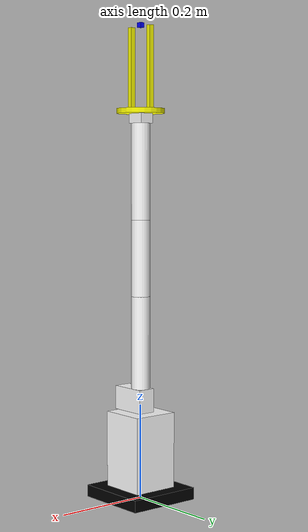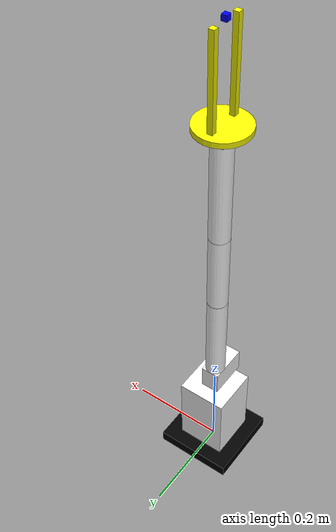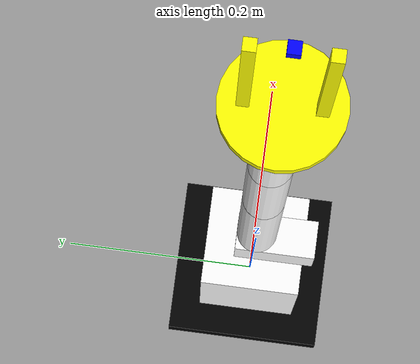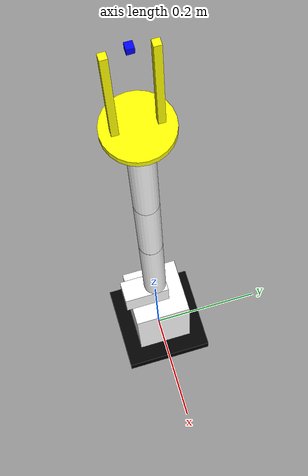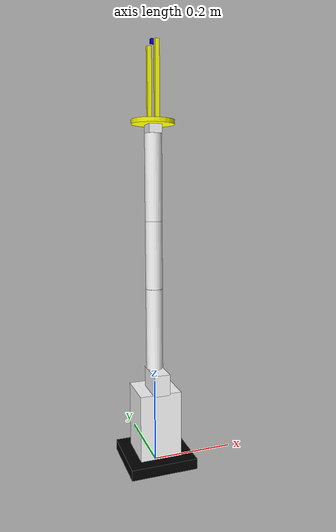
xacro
<?xml version="1.0"?>

<robot name="robotic_arm" xmlns:xacro="http://www.ros.org/wiki/xacro">

<material name="Yellow">
        <color rgba="1.0 1.0 0.0 1.0"/>
    </material>

    <material name="Black">
        <color rgba="0.0 0.0 0.0 1.0"/>
    </material>

<material name="White">
        <color rgba="1.0 1.0 1.0 1.0"/>
    </material>

 <material name="Blue">
        <color rgba="0.0 0.0 1.0 1.0"/>
    </material>

<!-- Shoulder yaw link properties -->
  <property name="shoulder_yaw_len" value="0.195" />

  <!-- Elbow roll link properties -->
  <property name="elbow_roll_len" value="0.16" />

  <property name="deg_to_rad" value="0.01745329251994329577"/>

  <!-- Constants -->
  <property name="M_SCALE" value="0.001 0.001 0.001"/>
  <property name="M_PI" value="3.14159"/>

<xacro:macro name="transmission_block" params="joint_name">
	  <transmission name="tran1">
	    <type>transmission_interface/SimpleTransmission</type>
	    <joint name="${joint_name}">
	      <hardwareInterface>PositionJointInterface</hardwareInterface>
	    </joint>
	    <actuator name="motor1">
	      <hardwareInterface>PositionJointInterface</hardwareInterface>
	      <mechanicalReduction>1</mechanicalReduction>
	    </actuator>
	  </transmission>
   </xacro:macro>

  <!-- BOTTOM LINK -->
  <link name="bottom_link">

	    <visual>
	      <origin xyz="0 0 0.0125" rpy="0 0 0" />
	      <geometry>

		       <box size="0.16 0.16 0.025" />

	      </geometry>
	     <material name="Black" />
	    </visual>

	    <collision>
	      <origin xyz="0 0 0.0125" rpy="0 0 0" />
	      <geometry>

		       <box size="0.16 0.16 0.025" />

	      </geometry>
	      </collision>>
  </link>

<joint name="bottom_joint" type="fixed">
	    <parent link="bottom_link"/>
	    <child link="base_link"/>
	    <origin xyz="0 0 0.105" rpy="0 0 0" />
  </joint>

<!-- BASE LINK -->
<link name="base_link">

	    <visual>
	      <origin xyz="0 0 0" rpy="0 0 0" />
	      <geometry>

		       <box size="0.1 0.1 0.16" />

	      </geometry>
	     <material name="White" />
	    </visual>

	    <collision>
	      <origin xyz="0 0 0" rpy="0 0 0" />
	      <geometry>

		       <box size="0.1 0.1 0.16" />

	      </geometry>
	      </collision>>
  </link>

<joint name="shoulder_pan_joint" type="revolute">
	    <parent link="base_link"/>
	    <child link="shoulder_pan_link"/>
	    <origin xyz="0 0 0.08" rpy="0 0 0" />
	    <axis xyz="0 0 1" />
	    <limit effort="300" velocity="1" lower="-1.57" upper="1.57"/>
  </joint>

<!-- SHOULDER PAN LINK -->
  <link name="shoulder_pan_link" >
	    <visual>
	      <origin xyz="0 -0.02 0.025" rpy="0 0 0" />
	      <geometry>
		    <box size="0.038 0.08 0.05"/>
	      </geometry>
	     <material name="White" />
	    </visual>
	    <collision>
	      <origin xyz="0 -0.02 0.025" rpy="0 0 0" />
	      <geometry>
		    <box size="0.038 0.08 0.05"/>
	      </geometry>
	    </collision>

  </link>

<joint name="shoulder_pitch_joint" type="revolute">
	    <parent link="shoulder_pan_link"/>
	    <child link="shoulder_pitch_link"/>
	    <origin xyz="0 0 0.05" rpy="0 0 0" />
	    <axis xyz="0 1 0" />
	    <limit effort="300" velocity="1" lower="-1.57" upper="1.57" />
  </joint>

  <!-- SHOULDER PITCH LINK -->
  <link name="shoulder_pitch_link" >

	    <visual>
	      <origin xyz="0 0 0" rpy="0 0 0" />
	      <geometry>
		    <box size="0 0 0"/>
	      </geometry>
	     <material name="White" />
	    </visual>
	    <collision>
	      <origin xyz="0 0 0" rpy="0 0 0" />
	      <geometry>
		    <box size="0 0 0"/>
	      </geometry>
	    </collision>

  </link>

<joint name="shoulder_yaw_joint" type="fixed">
	    <parent link="shoulder_pitch_link"/>
	    <child link="shoulder_yaw_link"/>
	    <origin xyz="0 0 0" rpy="0 0 0" />
	    <axis xyz="1 0 0" />
  </joint>

  <!-- SHOULDER YAW LINK -->
  <link name="shoulder_yaw_link" >

	    <visual>
	      <origin xyz="0 0 ${shoulder_yaw_len/2}" rpy="0 0 0" />
	      <geometry>
		    <cylinder radius="0.02" length="${shoulder_yaw_len}"/>
	      </geometry>
	     <material name="White" />
	    </visual>
	    <collision>
	      <origin xyz="0 0 ${shoulder_yaw_len/2}" rpy="0 0 0" />
	      <geometry>
		    <cylinder radius="0.02" length="${shoulder_yaw_len}"/>
	      </geometry>
	    </collision>

  </link>

<joint name="elbow_pitch_joint" type="revolute">
	    <parent link="shoulder_yaw_link"/>
	    <child link="elbow_pitch_link"/>
	    <origin xyz="0 0 ${shoulder_yaw_len}" rpy="0 0 0" />
	    <axis xyz="1 0 0" />
	    <limit effort="300" velocity="1" lower="-1.57" upper="1.57" />
  </joint>

  <!-- ELBOW PITCH LINK -->
  <link name="elbow_pitch_link" >

	    <visual>
	      <origin xyz="0 0 0" rpy="0 0 0" />
	      <geometry>
		    <sphere radius="0.02"/>
	      </geometry>
	     <material name="White" />
	    </visual>
	    <collision>
	      <origin xyz="0 0 0" rpy="0 0 0" />
	      <geometry>
		    <sphere radius="0.02"/>
	      </geometry>
	    </collision>

  </link>

<joint name="elbow_roll_joint" type="fixed">
	    <parent link="elbow_pitch_link"/>
	    <child link="elbow_roll_link"/>
	    <origin xyz="0 0 0" rpy="0 0 0" />
	    <axis xyz="0 0 1" />
	    <dynamics damping="50" friction="1"/>
  </joint>

  <!-- ELBOW ROLL LINK -->
  <link name="elbow_roll_link" >

	    <visual>
	      <origin xyz="0 0 ${elbow_roll_len/2}" rpy="0 0 0" />
	      <geometry>
		    <cylinder radius="0.02" length="${elbow_roll_len}"/>
	      </geometry>
	    <material name="White" />
	    </visual>
	    <collision>
	      <origin xyz="0 0 ${elbow_roll_len/2}" rpy="0 0 0" />
	      <geometry>
		    <cylinder radius="0.02" length="${elbow_roll_len}"/>
	      </geometry>
	    </collision>

  </link>

<joint name="wrist_pitch_joint" type="revolute">
	    <parent link="elbow_roll_link"/>
	    <child link="wrist_pitch_link"/>
	    <origin xyz="0 0 ${elbow_roll_len}" rpy="0 0 0" />
	    <axis xyz="0 1 0" />
	    <limit effort="300" velocity="1" lower="-1.57" upper="1.57" />
	    <dynamics damping="50" friction="1"/>
  </joint>

  <!-- WRIST PITCH LINK -->
  <link name="wrist_pitch_link" >

	    <visual>
	      <origin xyz="0 0 0.1" rpy="0 0 0" />
	      <geometry>
		    <cylinder radius="0.02" length="0.2"/>
	      </geometry>
	     <material name="White" />
	    </visual>
	    <collision>
	      <origin xyz="0 0 0.1" rpy="0 0 0" />
	      <geometry>
		    <cylinder radius="0.02" length="0.2"/>
	      </geometry>
	    </collision>

  </link>

<joint name="wrist_joint" type="continuous">
	    <parent link="wrist_pitch_link"/>
	    <child link="wrist_link"/>
	    <origin xyz="0 0 0.01" rpy="0 0 0" />
	    <axis xyz="0 0 1" />
  </joint>

  <!-- WRIST LINK -->
  <link name="wrist_link" >

	    <visual>
	      <origin xyz="0 0 0.2" rpy="0 0 0" />
	      <geometry>
		    <box size="0.03 0.04 0.02"/>
	      </geometry>
	    <material name="White" />
	    </visual>
	    <collision>
	      <origin xyz="0 0 0.2" rpy="0 0 0" />
	      <geometry>
		    <box size="0.03 0.04 0.02"/>
	      </geometry>
	    </collision>

  </link>

<joint name="grabber_joint" type="fixed">
	    <parent link="wrist_link"/>
	    <child link="grabber_link"/>
	    <origin xyz="0 0 0.21" rpy="0 0 0" />
  </joint>

  <!-- GRABBER LINK -->
  <link name="grabber_link" >

	    <visual>
	      <origin xyz="0 0 0.005" rpy="0 0 0" />
	      <geometry>
		    <cylinder radius="0.05" length="0.01"/>
	      </geometry>
	     <material name="Yellow" />
	    </visual>
	    <collision>
	      <origin xyz="0 0 0.005" rpy="0 0 0" />
	      <geometry>
		    <cylinder radius="0.05" length="0.01"/>
	      </geometry>
	    </collision>

  </link>

<joint name="finger_joint1" type="revolute">
    <parent link="grabber_link"/>
    <child link="finger_link1"/>
    <origin xyz="0.0 0 0.01" />
    <axis xyz="1 0 0" />
    <limit effort="300" velocity="1" lower="-0.30" upper="0.20" />
  </joint>

<!-- FINGER LINK 1-->
  <link name="finger_link1">

     <visual>
      <origin xyz="0 -0.03 0.08"/>
      <geometry>

           <box size="0.01 0.01 0.175" />

      </geometry>
     <material name="Yellow" />
    </visual>

  </link>

<joint name="finger_joint2" type="fixed">
    <parent link="grabber_link"/>
    <child link="finger_link2"/>
    <origin xyz="0.0 0 0.01" />
  </joint>

<!-- FINGER LINK 2-->
  <link name="finger_link2">

     <visual>
      <origin xyz="0 0.03 0.08"/>
      <geometry>

           <box size="0.01 0.01 0.175" />

      </geometry>
     <material name="Yellow" />
    </visual>

  </link>

<joint name="grasping_frame_joint" type="fixed">
      <parent link="grabber_link"/>
      <child link="grasping_frame"/>
      <origin xyz="0 0 0.18" rpy="0 0 0"/>
    </joint>

<!-- Grasping frame -->
    <link name="grasping_frame">
   <visual>
      <origin xyz="0 0 0"/>
      <geometry>

          <box size="0.01 0.01 0.01" />

      </geometry>
      <material name="Blue" />
    </visual>
    </link>

<!-- Transmissions for ROS Control -->
<xacro:transmission_block joint_name="shoulder_pan_joint"/>
<xacro:transmission_block joint_name="shoulder_pitch_joint"/>
<xacro:transmission_block joint_name="elbow_pitch_joint"/>
<xacro:transmission_block joint_name="wrist_pitch_joint"/>
<xacro:transmission_block joint_name="wrist_joint"/>
<xacro:transmission_block joint_name="finger_joint1"/>

</robot>
